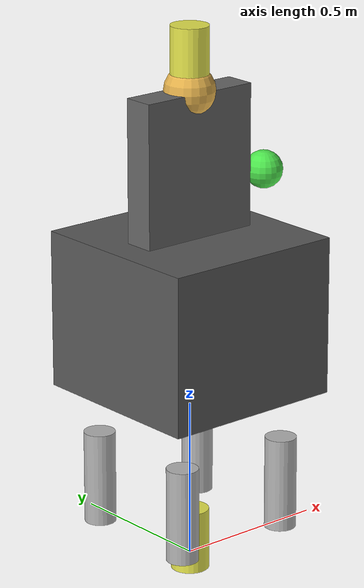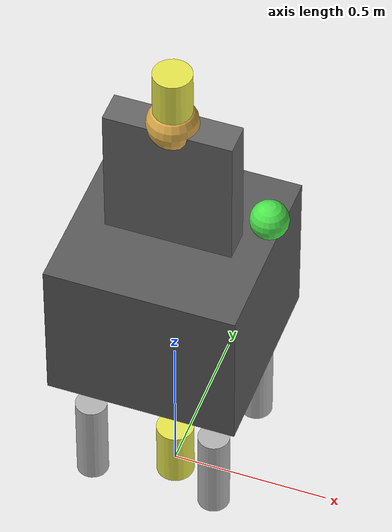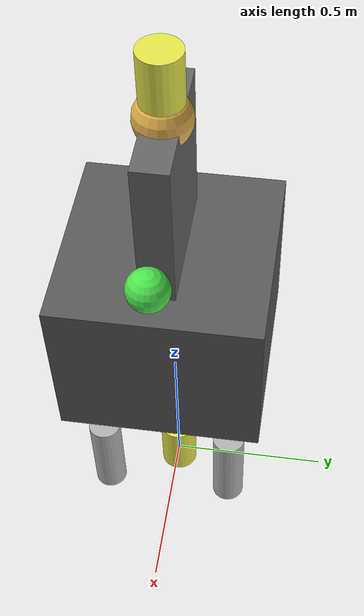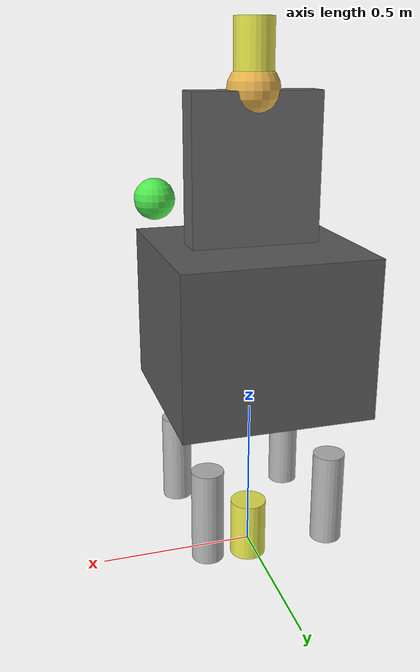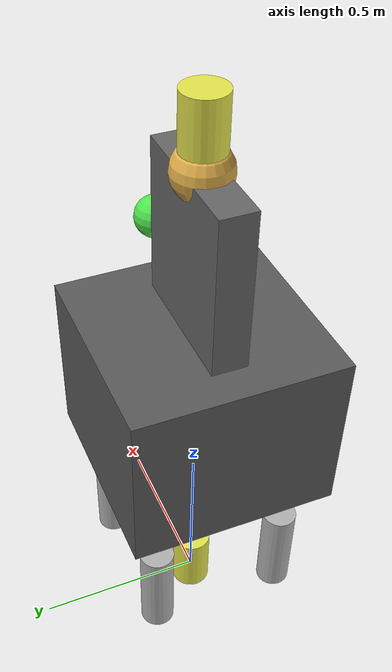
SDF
<?xml version="1.0"?>

<sdf version="1.10">

<model name="disconnector">

  <static>true</static>

  <link name="body">

    <!-- MAIN DISCONNECTOR HANDLE -->
    <visual name="handle_main">
      <pose>0 0 1.2 0 0 0</pose>
      <geometry>
        <box>
          <size>0.4 0.1 0.6</size>
        </box>
      </geometry>
      <material>
        <ambient>0.3 0.3 0.3 1</ambient>
        <diffuse>0.4 0.4 0.4 1</diffuse>
      </material>
    </visual>

    <visual name="handle_knob">
      <pose>0 0 1.5 0 0 0</pose>
      <geometry>
        <sphere>
          <radius>0.08</radius>
        </sphere>
      </geometry>
      <material>
        <ambient>0.8 0.6 0.2 1</ambient>
        <diffuse>0.9 0.7 0.3 1</diffuse>
      </material>
    </visual>

    <!-- SUPPORT FRAME -->
    <visual name="support_frame">
      <pose>0 0 0.8 0 0 0</pose>
      <geometry>
        <box>
          <size>0.6 0.6 0.5</size>
        </box>
      </geometry>
      <material>
        <ambient>0.25 0.25 0.25 1</ambient>
        <diffuse>0.35 0.35 0.35 1</diffuse>
      </material>
    </visual>

    <!-- MOUNTING STUDS -->
    <visual name="stud_1">
      <pose>-0.2 -0.2 0.25 0 0 0</pose>
      <geometry>
        <cylinder>
          <radius>0.05</radius>
          <length>0.3</length>
        </cylinder>
      </geometry>
      <material>
        <ambient>0.6 0.6 0.6 1</ambient>
        <diffuse>0.7 0.7 0.7 1</diffuse>
      </material>
    </visual>

    <visual name="stud_2">
      <pose>0.2 -0.2 0.25 0 0 0</pose>
      <geometry>
        <cylinder>
          <radius>0.05</radius>
          <length>0.3</length>
        </cylinder>
      </geometry>
      <material>
        <ambient>0.6 0.6 0.6 1</ambient>
        <diffuse>0.7 0.7 0.7 1</diffuse>
      </material>
    </visual>

    <visual name="stud_3">
      <pose>-0.2 0.2 0.25 0 0 0</pose>
      <geometry>
        <cylinder>
          <radius>0.05</radius>
          <length>0.3</length>
        </cylinder>
      </geometry>
      <material>
        <ambient>0.6 0.6 0.6 1</ambient>
        <diffuse>0.7 0.7 0.7 1</diffuse>
      </material>
    </visual>

    <visual name="stud_4">
      <pose>0.2 0.2 0.25 0 0 0</pose>
      <geometry>
        <cylinder>
          <radius>0.05</radius>
          <length>0.3</length>
        </cylinder>
      </geometry>
      <material>
        <ambient>0.6 0.6 0.6 1</ambient>
        <diffuse>0.7 0.7 0.7 1</diffuse>
      </material>
    </visual>

    <!-- ELECTRICAL TERMINALS -->
    <visual name="terminal_top">
      <pose>0 0 1.6 0 0 0</pose>
      <geometry>
        <cylinder>
          <radius>0.06</radius>
          <length>0.2</length>
        </cylinder>
      </geometry>
      <material>
        <ambient>0.8 0.8 0.2 1</ambient>
        <diffuse>0.9 0.9 0.3 1</diffuse>
      </material>
    </visual>

    <visual name="terminal_bottom">
      <pose>0 0 0.05 0 0 0</pose>
      <geometry>
        <cylinder>
          <radius>0.06</radius>
          <length>0.2</length>
        </cylinder>
      </geometry>
      <material>
        <ambient>0.8 0.8 0.2 1</ambient>
        <diffuse>0.9 0.9 0.3 1</diffuse>
      </material>
    </visual>

    <!-- STATUS INDICATOR -->
    <visual name="status_closed">
      <pose>0.3 0 1.2 0 0 0</pose>
      <geometry>
        <sphere>
          <radius>0.06</radius>
        </sphere>
      </geometry>
      <material>
        <ambient>0.2 0.8 0.2 1</ambient>
        <diffuse>0.3 0.9 0.3 1</diffuse>
      </material>
    </visual>

    <!-- COLLISION -->
    <collision name="collision">
      <pose>0 0 0.8 0 0 0</pose>
      <geometry>
        <box>
          <size>0.7 0.7 1.6</size>
        </box>
      </geometry>
    </collision>

  </link>

</model>

</sdf>
